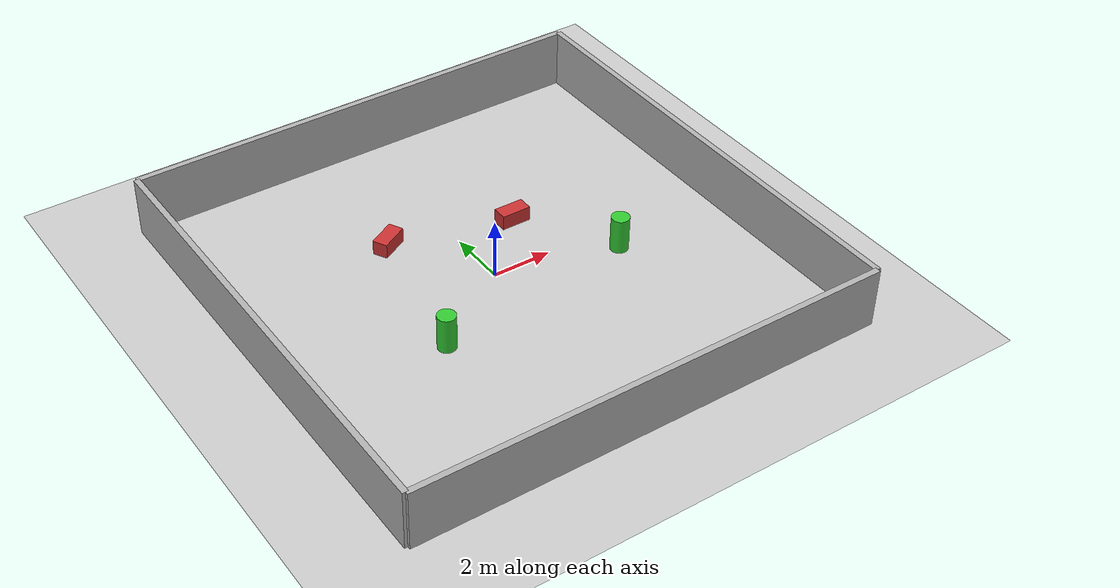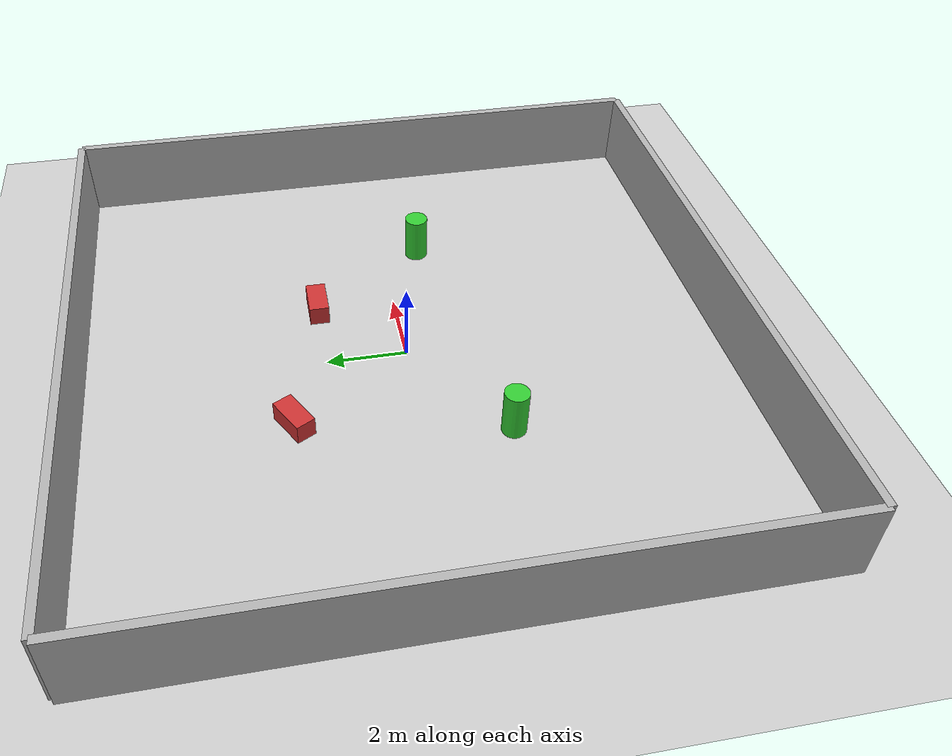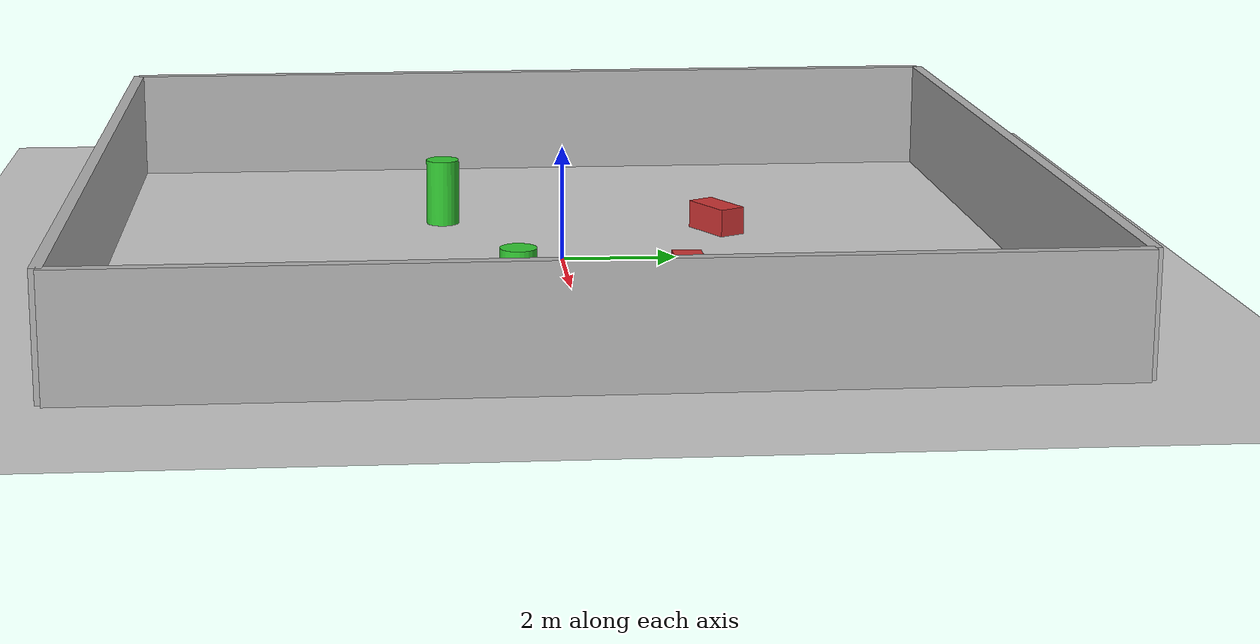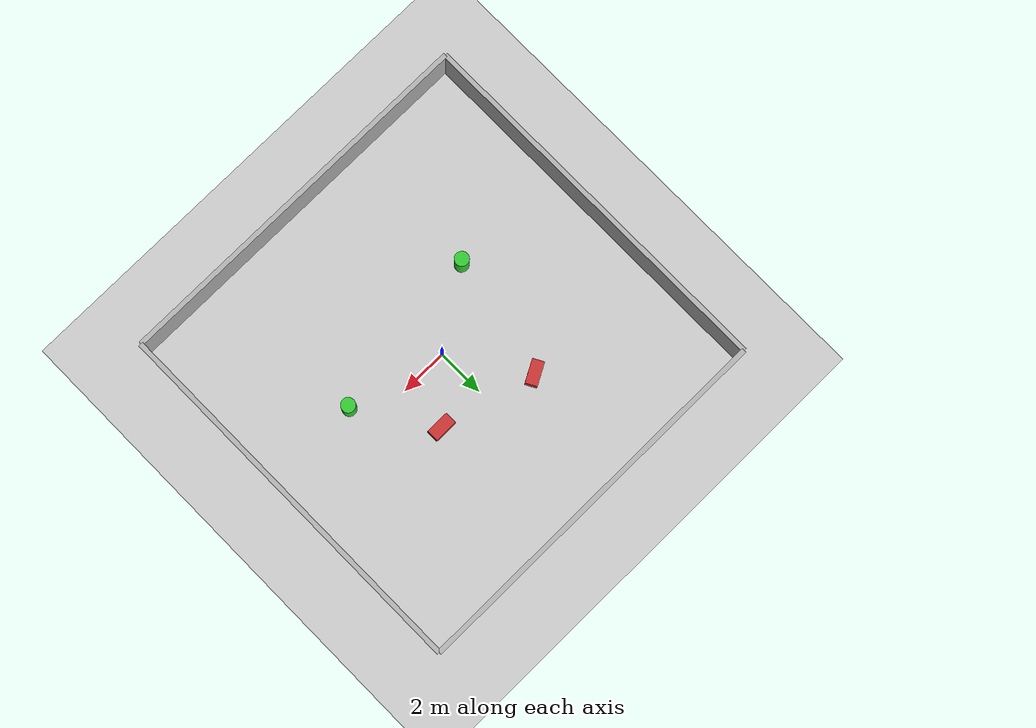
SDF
<?xml version="1.0"?>
<!--
Obstacle course world for navigation testing
Uses custom box and cylinder obstacles
-->
<sdf version="1.6">
  <world name="obstacle_course">

    <!-- Physics -->
    <physics type="ode">
      <max_step_size>0.001</max_step_size>
      <real_time_update_rate>1000</real_time_update_rate>
    </physics>

    <!-- Scene -->
    <scene>
      <ambient>0.5 0.5 0.5 1</ambient>
      <background>0.7 0.8 1 1</background>
      <shadows>true</shadows>
    </scene>

    <!-- Lighting -->
    <include>
      <uri>model://sun</uri>
    </include>

    <!-- Ground -->
    <include>
      <uri>model://ground_plane</uri>
    </include>

    <!-- Custom obstacles -->
    <include>
      <uri>model://box_obstacle</uri>
      <name>box1</name>
      <pose>2 2 0.25 0 0 0</pose>
    </include>

    <include>
      <uri>model://box_obstacle</uri>
      <name>box2</name>
      <pose>-2 3 0.25 0 0 0.5</pose>
    </include>

    <include>
      <uri>model://cylinder_obstacle</uri>
      <name>cylinder1</name>
      <pose>4 -1 0.6 0 0 0</pose>
    </include>

    <include>
      <uri>model://cylinder_obstacle</uri>
      <name>cylinder2</name>
      <pose>-3 -2 0.6 0 0 0</pose>
    </include>

    <!-- Walls forming arena -->
    <model name="wall_north">
      <static>true</static>
      <pose>0 8 1 0 0 0</pose>
      <link name="link">
        <visual name="visual">
          <geometry><box><size>16 0.2 2</size></box></geometry>
          <material><ambient>0.7 0.7 0.7 1</ambient></material>
        </visual>
        <collision name="collision">
          <geometry><box><size>16 0.2 2</size></box></geometry>
        </collision>
      </link>
    </model>

    <model name="wall_south">
      <static>true</static>
      <pose>0 -8 1 0 0 0</pose>
      <link name="link">
        <visual name="visual">
          <geometry><box><size>16 0.2 2</size></box></geometry>
          <material><ambient>0.7 0.7 0.7 1</ambient></material>
        </visual>
        <collision name="collision">
          <geometry><box><size>16 0.2 2</size></box></geometry>
        </collision>
      </link>
    </model>

    <model name="wall_east">
      <static>true</static>
      <pose>8 0 1 0 0 0</pose>
      <link name="link">
        <visual name="visual">
          <geometry><box><size>0.2 16 2</size></box></geometry>
          <material><ambient>0.7 0.7 0.7 1</ambient></material>
        </visual>
        <collision name="collision">
          <geometry><box><size>0.2 16 2</size></box></geometry>
        </collision>
      </link>
    </model>

    <model name="wall_west">
      <static>true</static>
      <pose>-8 0 1 0 0 0</pose>
      <link name="link">
        <visual name="visual">
          <geometry><box><size>0.2 16 2</size></box></geometry>
          <material><ambient>0.7 0.7 0.7 1</ambient></material>
        </visual>
        <collision name="collision">
          <geometry><box><size>0.2 16 2</size></box></geometry>
        </collision>
      </link>
    </model>

  </world>
</sdf>

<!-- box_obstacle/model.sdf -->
<sdf version="1.6">
  <model name="box_obstacle">
    <static>true</static>

    <link name="link">
      <visual name="visual">
        <geometry>
          <box>
            <size>1.0 0.5 0.5</size>
          </box>
        </geometry>
        <material>
          <ambient>0.8 0.2 0.2 1</ambient>
          <diffuse>0.8 0.2 0.2 1</diffuse>
        </material>
      </visual>

      <collision name="collision">
        <geometry>
          <box>
            <size>1.0 0.5 0.5</size>
          </box>
        </geometry>
      </collision>
    </link>
  </model>
</sdf>

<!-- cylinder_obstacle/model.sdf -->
<sdf version="1.6">
  <model name="cylinder_obstacle">
    <static>true</static>

    <link name="link">
      <visual name="visual">
        <geometry>
          <cylinder>
            <radius>0.3</radius>
            <length>1.2</length>
          </cylinder>
        </geometry>
        <material>
          <ambient>0.2 0.8 0.2 1</ambient>
          <diffuse>0.2 0.8 0.2 1</diffuse>
        </material>
      </visual>

      <collision name="collision">
        <geometry>
          <cylinder>
            <radius>0.3</radius>
            <length>1.2</length>
          </cylinder>
        </geometry>
      </collision>
    </link>
  </model>
</sdf>
